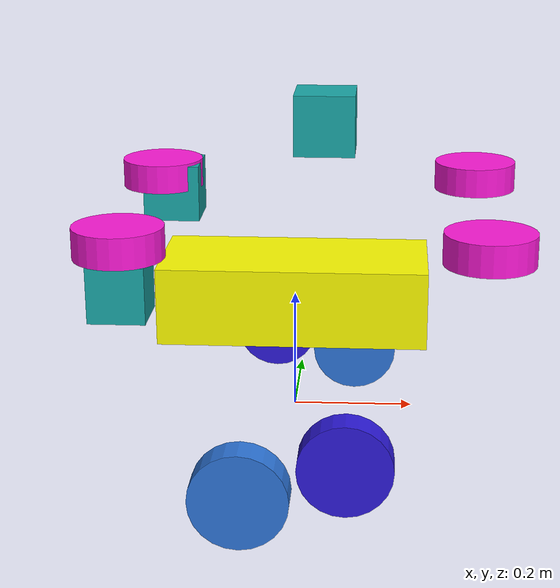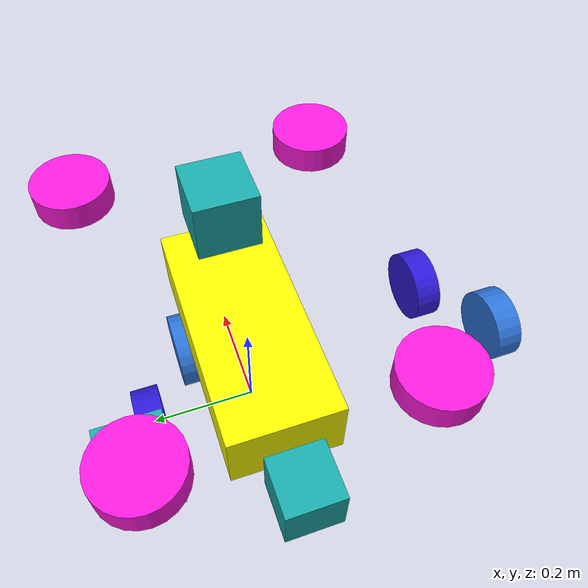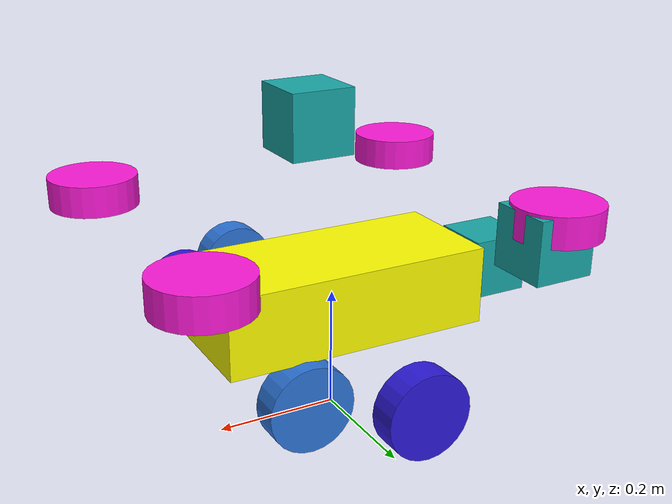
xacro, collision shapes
<?xml version="1.0"?>
<robot name="linorobot2_2wd" xmlns:xacro="http://ros.org/wiki/xacro">

  <xacro:include filename="$(find linorobot2_description)/urdf/mecanum_properties.urdf.xacro" />
  <xacro:include filename="$(find linorobot2_description)/urdf/mech/base.urdf.xacro" />
  <xacro:include filename="$(find linorobot2_description)/urdf/mech/mecanum_wheel.urdf.xacro" />
  <xacro:include filename="$(find linorobot2_description)/urdf/mech/mecanum_wheel2.urdf.xacro" />
  <xacro:include filename="$(find linorobot2_description)/urdf/sensors/imu.urdf.xacro" />
  <xacro:include filename="$(find linorobot2_description)/urdf/sensors/generic_laser.urdf.xacro" />
  <xacro:include filename="$(find linorobot2_description)/urdf/sensors/depth_sensor.urdf.xacro" />
  <xacro:include filename="$(find linorobot2_description)/urdf/controllers/omni_drive.urdf.xacro" />
  <xacro:include filename="$(find linorobot2_description)/urdf/robots/suspention.urdf.xacro" />

 <xacro:property name="teker" value="-0.4" />

  <xacro:base
    length="${base_length}"
    width="${base_width}"
    height="${base_height}"
    mass="${base_mass}"
    wheel_radius="${wheel_radius}"
    wheel_pos_z="${wheel_pos_z}"
/>

  <xacro:mecanum_wheel2
    side="front_left"
    radius="${wheel_radius}"
    width="${wheel_width}"
    pos_x="${wheel_pos_x-0.02}"
    pos_y="0.1"
    pos_z="${wheel_pos_z}"
    mass="${wheel_mass}"
    yon="-1.57"
  />

  <xacro:mecanum_wheel
    side="front_right"
    radius="${wheel_radius}"
    width="${wheel_width}"
    pos_x="${wheel_pos_x-0.02}"
    pos_y="${teker}"
    pos_z="${wheel_pos_z}"
    mass="${wheel_mass}"
    yon="1.57"

  />
  <xacro:mecanum_wheel
    side="rear_left"
    radius="${wheel_radius}"
    width="${wheel_width}"
    pos_x="${-wheel_pos_x+0.075}"
    pos_y="0.202"
    pos_z="${wheel_pos_z}"
    mass="${wheel_mass}"
    yon="-1.57"

  />

  <xacro:mecanum_wheel2
    side="rear_right"
    radius="${wheel_radius}"
    width="${wheel_width}"
    pos_x="${-wheel_pos_x+0.075}"
    pos_y="${teker-0.105}"
    pos_z="${wheel_pos_z}"
    mass="${wheel_mass}"
    yon="1.57"

  />

  <xacro:suspention
    side="front_left"
    radius="${wheel_radius}"
    width="${wheel_width}"
    pos_x="0.31"
    pos_y="0.23"
    pos_z="0.235"
    mass="0"
    yon="0"
    yonp="-0.8"

  />
   <xacro:suspention
    side="front_right"
    radius="${wheel_radius}"
    width="${wheel_width}"
    pos_x="0.31"
    pos_y="-0.23"
    pos_z="0.235"
    mass="0"
    yon="0"
    yonp="-0.8"
  />
   <xacro:suspention
    side="rear_left"
    radius="${wheel_radius}"
    width="${wheel_width}"
    pos_x="-0.255"
    pos_y="-0.225"
    pos_z="0.235"
    mass="0"
    yon="0"
    yonp="0.8"

  />
   <xacro:suspention
    side="rear_right"
    radius="${wheel_radius}"
    width="${wheel_width}"
    pos_x="-0.255"
    pos_y="0.225"
    pos_z="0.235"
    mass="0"
    yon="0"
    yonp="0.8"

  />

  <xacro:imu/>

  <xacro:generic_laser>
    <xacro:insert_block name="laser_pose" />
  </xacro:generic_laser>

  <xacro:depth_sensor>
    <xacro:insert_block name="depth_sensor_pose" />
  </xacro:depth_sensor>

  <xacro:omni_drive_controller/>
</robot>

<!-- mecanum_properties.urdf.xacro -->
<robot xmlns:xacro="http://ros.org/wiki/xacro">
  <xacro:arg name="namespace" default="" />
  <xacro:property name="base_length" value="0.445" />
  <xacro:property name="base_width" value="0.200" />
  <xacro:property name="base_height" value="0.129" />
  <xacro:property name="base_mass" value="10" />
  <!-- set empty on the wheel_mesh_file to use geometry instead of mesh -->
  <xacro:property name="base_mesh_file" value="" />

  <xacro:property name="wheel_radius" value="0.07162" />
  <xacro:property name="wheel_width" value="0.05" />
  <xacro:property name="wheel_pos_x" value="0.120" />
  <xacro:property name="wheel_pos_y" value="0.1355" />
  <xacro:property name="wheel_pos_z" value="-0.04788" />
  <xacro:property name="wheel_mass" value=".6" />
  <xacro:property name="wheel_torque" value="20" />
  <!-- set empty on the wheel_mesh_file to use geometry instead of mesh -->
  <xacro:property name="wheel_mesh_file" value="" />

  <xacro:property name="laser_pose">
    <origin xyz="-0.0475 0 0.125" rpy="0 0 0"/>
  </xacro:property>

  <xacro:property name="depth_sensor_pose">
    <origin xyz="0.2375 0 0.06" rpy="0 0 0"/>
  </xacro:property>
</robot>

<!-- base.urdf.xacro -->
<robot xmlns:xacro="http://ros.org/wiki/xacro">
  <xacro:macro name="base" params="length width height mass wheel_radius wheel_pos_z">
   <xacro:property name="yukseklik" value="0.085" />

    <link name="base_footprint"/>

    <link name="base_link">
      <visual>
        <origin xyz="-0.3 0 ${yukseklik}" rpy="0 0 1.57"/>
        <geometry>
          <mesh scale="0.002 0.002 0.002" filename="file:///home/samet/Desktop/ROS_WSLER/arcelik_lino2_workspace/lino2/linorobot2/linorobot2_description/mesh/chassis_red.stl"/>
        </geometry>
        <material name="red">
          <color rgba="1.0 1.0 0.0 1.0" />
        </material>
      </visual>

      <collision>
        <origin xyz="0 0 ${yukseklik}" rpy="0 0 3.14"/>
        <geometry>
          <box size="${length} ${width} ${height}"/>
        </geometry>
      </collision>

      <inertial>
        <origin xyz="0 0 0" rpy="0 0 0"/>
        <mass value="${mass}"/>
        <inertia ixx="${(1/12) * mass * ((width  * width)  + (height * height))}" ixy="0.0" ixz="0.0"
                 iyy="${(1/12) * mass * ((length * length) + (height * height))}" iyz="0.0"
                 izz="${(1/12) * mass * ((length * length) + (width  * width))}"/>
      </inertial>
    </link>
    <link name="rplidar">
      <inertial>
        <origin xyz="0 0 0" rpy="0 0 0"/>
        <mass value="1"/>
        <inertia ixx="0.1"  ixy="0"  ixz="0" iyy="0.1" iyz="0" izz="0.1" />
      </inertial>

      <visual>
        <origin xyz="0 0 ${yukseklik}" rpy="0 0 0" />
        <geometry>
          <mesh scale="0.002 0.002 0.002" filename="file:///home/samet/Desktop/robomaster-stl-files/Robomaster_Sim/lidar.stl"/>
        </geometry>
        <material name="yellow">
          <color rgba="0.1 0.6627 0.6627 1.0"/>
        </material>
      </visual>
      <collision>
        <origin xyz="0 0 ${yukseklik}" rpy="0 0 0"/>
        <geometry>
          <box size="0.1 0.1 0.1" />
        </geometry>
      </collision>
    </link>
        <link name="iskelet">
      <inertial>
        <origin xyz="0 0 0" rpy="0 0 0"/>
        <mass value="1"/>
        <inertia ixx="0.1"  ixy="0"  ixz="0" iyy="0.1" iyz="0" izz="0.1" />
      </inertial>

      <visual>
        <origin xyz="0 0 ${yukseklik}" rpy="0 0 0" />
        <geometry>
          <mesh scale="0.002 0.002 0.002" filename="file:///home/samet/Desktop/ROS_WSLER/arcelik_lino2_workspace/lino2/linorobot2/linorobot2_description/mesh/son_rigs.stl"/>
        </geometry>
        <material name="yellow">
          <color rgba="0.1 0.6627 0.6627 1.0"/>
        </material>
      </visual>
      <collision>
        <origin xyz="0 0 ${yukseklik}" rpy="0 0 0"/>
        <geometry>
          <box size="0.1 0.1 0.1" />
        </geometry>
      </collision>
    </link>

    <link name="ust_plaka">
      <inertial>
        <origin xyz="0 0 0" rpy="0 0 0"/>
        <mass value="1"/>
        <inertia ixx="0.1"  ixy="0"  ixz="0" iyy="0.1" iyz="0" izz="0.1" />
      </inertial>

      <visual>
        <origin xyz="0 0 ${yukseklik}" rpy="0 0 0" />
        <geometry>
          <mesh scale="0.002 0.002 0.002" filename="file:///home/samet/Desktop/ROS_WSLER/arcelik_lino2_workspace/lino2/linorobot2/linorobot2_description/mesh/UstPlaka2.stl"/>
        </geometry>
        <material name="yellow">
          <color rgba="0.1 0.6627 0.6627 1.0"/>
        </material>
      </visual>
      <collision>
        <origin xyz="0 0 ${yukseklik}" rpy="0 0 0"/>
        <geometry>
          <box size="0.1 0.1 0.1" />
        </geometry>
      </collision>
    </link>

    <gazebo reference="base_link">
      <visual>
        <material>
          <ambient>0.8392 0.6314 0.0 1.0</ambient>
          <diffuse>0.8392 0.6314 0.0 1.0</diffuse>
          <specular>0.99 0.99 0.99 1.0</specular>
          <emissive>0.0 0.0 0.0 0.0</emissive>
        </material>
      </visual>
    </gazebo>

    <joint name="base_to_footprint" type="fixed">
      <parent link="base_footprint"/>
      <child link="base_link"/>
      <origin xyz="0 0 ${wheel_radius - wheel_pos_z}" rpy="0 0 0"/>
    </joint>
        <joint name="lidar_joint" type="fixed">
      <parent link="base_link"/>
      <child link="rplidar"/>
      <origin xyz="0.05 0.015 0.29" rpy="0 0 1.57"/>
    </joint>
        <joint name="rig_joint" type="fixed">
      <parent link="base_link"/>
      <child link="iskelet"/>
      <origin xyz="-0.235 0.225 0.12" rpy="0 0 -1.57"/>
    </joint>
        <joint name="ust_plaka_joint" type="fixed">
      <parent link="base_link"/>
      <child link="ust_plaka"/>
      <origin xyz="-0.3 0 0" rpy="0 0 1.57"/>
    </joint>

  </xacro:macro>
</robot>

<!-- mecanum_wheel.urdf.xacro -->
<robot xmlns:xacro="http://ros.org/wiki/xacro">
  <xacro:macro name="mecanum_wheel" params="side radius width pos_x pos_y pos_z mass yon">
    <link name="${side}_wheel_link">
      <visual>
        <origin xyz="0 0.1 0" rpy="${yon} 0 0"/>
        <geometry>
          <mesh scale="0.002 0.002 0.002" filename="file:///home/samet/Desktop/ROS_WSLER/arcelik_lino2_workspace/lino2/linorobot2/linorobot2_description/mesh/teker_cw.dae"/>
        </geometry>
        <material name="blue">
            <color rgba="0.1764 0.1 0.8509 1.0"/>
        </material>
      </visual>
      <collision>
        <origin xyz="0 0 0" rpy="${yon} 0 0"/>
        <geometry>
          <cylinder radius="${radius}" length="${width}"/>
        </geometry>
      </collision>

      <inertial>
        <origin xyz="0 0 0" rpy="0 0 0"/>
        <mass value="${mass}"/>
        <inertia ixx="${(2/5) * mass * (radius * radius)}" ixy="0" ixz="0"
                 iyy="${(2/5) * mass * (radius * radius)}" iyz="0"
                 izz="${(2/5) * mass * (radius * radius)}" />
      </inertial>
    </link>

    <gazebo reference="${side}_wheel_link">
        <mu1>0.2</mu1>
        <mu2>0.2</mu2>
    </gazebo>

    <gazebo reference="${side}_wheel_link">
      <visual>
        <material>
          <ambient>0.1764 0.4588 0.8509 1.0</ambient>
          <diffuse>0.1764 0.4588 0.8509 1.0</diffuse>
          <specular>0.1764 0.4588 0.8509 1.0</specular>
          <emissive>0.0 0.0 0.0 0.0</emissive>
        </material>
      </visual>
    </gazebo>
    <joint name="${side}_wheel_joint" type="continuous">
      <axis xyz="0 1 0" />
      <parent link="base_link"/>
      <child link="${side}_wheel_link"/>
      <origin xyz="${pos_x} ${pos_y} ${pos_z}" rpy="0 0 0"/>
    </joint>
  </xacro:macro>
</robot>

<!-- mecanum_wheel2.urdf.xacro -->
<robot xmlns:xacro="http://ros.org/wiki/xacro">
  <xacro:macro name="mecanum_wheel2" params="side radius width pos_x pos_y pos_z mass yon">
    <link name="${side}_wheel_link">
      <visual>
        <origin xyz="0 0.21 0" rpy="${yon} 0 0"/>
        <geometry>
          <mesh scale="0.002 0.002 0.002" filename="file:///home/samet/Desktop/ROS_WSLER/arcelik_lino2_workspace/lino2/linorobot2/linorobot2_description/mesh/teker_cw.dae"/>
        </geometry>
        <material name="blue">
            <color rgba="0.1764 0.4588 0.8509 1.0"/>
        </material>
      </visual>
      <collision>
        <origin xyz="0 0 0" rpy="${yon} 0 0"/>
        <geometry>
          <cylinder radius="${radius}" length="${width}"/>
        </geometry>
      </collision>

      <inertial>
        <origin xyz="0 0 0" rpy="0 0 0"/>
        <mass value="${mass}"/>
        <inertia ixx="${(2/5) * mass * (radius * radius)}" ixy="0" ixz="0"
                 iyy="${(2/5) * mass * (radius * radius)}" iyz="0"
                 izz="${(2/5) * mass * (radius * radius)}" />
      </inertial>
    </link>

    <gazebo reference="${side}_wheel_link">
        <mu1>0.2</mu1>
        <mu2>0.2</mu2>
    </gazebo>

    <gazebo reference="${side}_wheel_link">
      <visual>
        <material>
          <ambient>0.1764 0.4588 0.8509 1.0</ambient>
          <diffuse>0.1764 0.4588 0.8509 1.0</diffuse>
          <specular>0.1764 0.4588 0.8509 1.0</specular>
          <emissive>0.0 0.0 0.0 0.0</emissive>
        </material>
      </visual>
    </gazebo>
    <joint name="${side}_wheel_joint" type="continuous">
      <axis xyz="0 1 0" />
      <parent link="base_link"/>
      <child link="${side}_wheel_link"/>
      <origin xyz="${pos_x} ${pos_y} ${pos_z}" rpy="0 0 0"/>
    </joint>
  </xacro:macro>
</robot>

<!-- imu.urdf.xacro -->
<robot xmlns:xacro="http://ros.org/wiki/xacro">
  <xacro:macro name="imu">
    <link name="imu_link"/>

    <joint name="imu_to_base_link" type="fixed">
      <parent link="base_link"/>
      <child link="imu_link"/>
      <origin xyz="0 0 0" rpy="0 0 0"/>
    </joint>

    <gazebo>
      <plugin filename="gz-sim-imu-system" name="gz::sim::systems::Imu">
      </plugin>
    </gazebo>

    <gazebo reference="imu_link">
      <sensor name="imu_sensor" type="imu">
        <topic>$(arg namespace)/imu/data</topic>
        <update_rate>50</update_rate>
        <always_on>true</always_on>
        <visualize>true</visualize>
      </sensor>
    </gazebo>
  </xacro:macro>
</robot>

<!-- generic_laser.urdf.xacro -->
<robot xmlns:xacro="http://ros.org/wiki/xacro">
  <xacro:include filename="$(find linorobot2_description)/urdf/sensors/laser.urdf.xacro" />

  <xacro:macro name="generic_laser" params="*origin">
    <xacro:laser
      update_rate="10"
      ray_count="360"
      min_angle="-3.1416"
      max_angle="3.1416"
      min_range="0.08"
      max_range="12.0"
      frame_id="laser"
      topic_name="/scan"
    >
      <xacro:insert_block name="origin" />
    </xacro:laser>
  </xacro:macro>

  <xacro:macro name="generic_base_laser" params="*origin">
    <xacro:laser
      update_rate="10"
      ray_count="360"
      min_angle="-3.1416"
      max_angle="3.1416"
      min_range="0.21"
      max_range="5.5"
      frame_id="base_laser"
      topic_name="base/scan"
    >
      <xacro:insert_block name="origin" />
    </xacro:laser>
  </xacro:macro>
</robot>

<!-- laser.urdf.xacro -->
<robot xmlns:xacro="http://ros.org/wiki/xacro">
  <xacro:property name="M_PI" value="3.1415926535897931" />
  <xacro:macro name="laser" params="*origin update_rate ray_count min_angle max_angle min_range max_range frame_id topic_name">
    <link name="${frame_id}">
      <visual>
        <origin xyz="0 0 -0.025" rpy="0 0 0"/>
        <geometry>
          <cylinder radius="0.0375" length="0.05"/>
        </geometry>
        <material name="green">
            <color rgba="0.003 0.639 0.223 1.0"/>
        </material>
      </visual>
      <collision>
        <origin xyz="0 0 -0.025" rpy="0 0 0"/>
        <geometry>
          <cylinder radius="0.0375" length="0.05"/>
        </geometry>
      </collision>

      <inertial>
        <origin xyz="0 0 0" rpy="0 0 0"/>
        <mass value="0.1"/>
        <inertia ixx="${(2/5) * 0.1 * (0.0375 * 0.0375)}" ixy="0" ixz="0"
                 iyy="${(2/5) * 0.1 * (0.0375 * 0.0375)}" iyz="0"
                 izz="${(2/5) * 0.1 * (0.0375 * 0.0375)}" />
      </inertial>
    </link>

    <gazebo reference="${frame_id}">
      <visual>
        <material>
          <ambient>0.003 0.639 0.223 1.0</ambient>
          <diffuse>0.003 0.639 0.223 1.0</diffuse>
          <specular>0.003 0.639 0.223 1.0</specular>
          <emissive>0.0 0.0 0.0 0.0</emissive>
        </material>
      </visual>
    </gazebo>

    <joint name="${frame_id}_to_base_link" type="fixed">
      <parent link="base_link"/>
      <child link="${frame_id}"/>
      <xacro:insert_block name="origin" />
    </joint>

    <gazebo reference="${frame_id}">
      <sensor name="gpu_lidar" type="gpu_lidar">
        <topic>$(arg namespace)${topic_name}</topic>
        <gz_frame_id>${frame_id}</gz_frame_id>
        <update_rate>${update_rate}</update_rate>
        <always_on>true</always_on>
        <visualize>true</visualize>
        <lidar>
          <scan>
            <horizontal>
              <samples>${ray_count}</samples>
              <resolution>1</resolution>
              <min_angle>${min_angle}</min_angle>
              <max_angle>${max_angle}</max_angle>
            </horizontal>
            <vertical>
              <samples>1</samples>
              <resolution>1</resolution>
              <min_angle>0.0</min_angle>
              <max_angle>0.0</max_angle>
            </vertical>
          </scan>
          <range>
            <min>${min_range}</min>
            <max>${max_range}</max>
            <resolution>0.01</resolution>
          </range>
        </lidar>
      </sensor>
    </gazebo>
  </xacro:macro>
</robot>

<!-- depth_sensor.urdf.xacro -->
<robot xmlns:xacro="http://ros.org/wiki/xacro">
  <xacro:property name="M_PI" value="3.1415926535897931" />
  <xacro:macro name="depth_sensor" params="*origin">
    <link name="camera_link">
      <inertial>
        <origin xyz="0 0 0" rpy="0 0 0"/>
        <mass value="0.01"/>
        <inertia ixx="0.1"  ixy="0"  ixz="0" iyy="0.1" iyz="0" izz="0.1" />
      </inertial>
      <visual>
        <origin xyz="0 0 0" rpy="1.57 0 1.57" />
        <geometry>
          <mesh scale="0.002 0.002 0.002" filename="file:///home/samet/Desktop/ROS_WSLER/arcelik_lino2_workspace/lino2/linorobot2/linorobot2_description/mesh/Intel_realsense.stl"/>
        </geometry>
        <material name="yellow">
          <color rgba="0.1 0.6627 0.6627 1.0"/>
        </material>
      </visual>
    </link>

    <gazebo reference="camera_link">
      <visual>
        <material>
          <ambient>0.416 0.051 0.047 1.0</ambient>
          <diffuse>0.416 0.051 0.047 1.0</diffuse>
          <specular>0.416 0.051 0.047 1.0</specular>
          <emissive>0.416 0.051 0.047 1.0</emissive>
        </material>
      </visual>
    </gazebo>rgb(255,1,255)

    <joint name="camera_to_base_link" type="fixed">
            <origin xyz="0.55 0 0.3" rpy="0 0 0"/>

      <parent link="base_link"/>
      <child link="camera_link"/>
      <xacro:insert_block name="origin" />
    </joint>

    <link name="camera_depth_link"/>
    <joint name="camera_depth_joint" type="fixed">
      <origin xyz="0 0 0" rpy="0 0 0"/>
      <parent link="camera_link"/>
      <child link="camera_depth_link"/>
    </joint>

    https://github.com/ros-simulation/gazebo_ros_pkgs/wiki/ROS-2-Migration:-Camera#gazebo_ros_camera
    <gazebo reference="camera_link">
      <sensor name="camera" type="depth">
        <always_on>true</always_on>
        <update_rate>30.0</update_rate>
        <camera name="camera">
          <horizontal_fov>1.50098</horizontal_fov>
          <image>
            <width>640</width>
            <height>480</height>
            <format>R8G8B8</format>
          </image>
        </camera>
        <plugin name="camera_controller" filename="libgazebo_ros_camera.so">
          <ros>
            <remapping>/camera/camera_info:=/camera/color/camera_info</remapping>
            <remapping>/camera/image_raw:=/camera/color/image_raw</remapping>
            <remapping>/camera/points:=/camera/depth/color/points</remapping>
            <remapping>/camera/depth/image_raw:=/camera/depth/image_rect_raw</remapping>
          </ros>
          <min_depth>0.015</min_depth>
          <max_depth>3.0</max_depth>
          <hack_baseline>0.07</hack_baseline>
          <frame_name>camera_depth_link</frame_name>
          <distortion_k1>0.00000001</distortion_k1>
          <distortion_k2>0.00000001</distortion_k2>
          <distortion_k3>0.00000001</distortion_k3>
          <distortion_t1>0.00000001</distortion_t1>
          <distortion_t2>0.00000001</distortion_t2>
        </plugin>
      </sensor>

    </gazebo>
  </xacro:macro>
</robot>

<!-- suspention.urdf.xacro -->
<robot xmlns:xacro="http://ros.org/wiki/xacro">
  <xacro:macro name="suspention" params="side radius width pos_x pos_y pos_z mass yon yonp">
    <link name="${side}_suspention_link">
      <visual>
        <origin xyz="0 0 0" rpy="${yon} ${yonp} 0"/>
        <geometry>
          <mesh scale="0.002 0.002 0.002" filename="file:///home/samet/Desktop/ROS_WSLER/arcelik_lino2_workspace/lino2/linorobot2/linorobot2_description/mesh/suspention_son.dae"/>
        </geometry>
        <material name="blue">
            <color rgba="1 0.1 0.8509 0.0"/>
        </material>
      </visual>
      <collision>
        <origin xyz="0 0 0" rpy="${yon} 0 0"/>
        <geometry>
          <cylinder radius="${radius}" length="${width}"/>
        </geometry>
      </collision>

      <inertial>
        <origin xyz="0 0 0" rpy="0 0 0"/>
        <mass value="${mass}"/>
        <inertia ixx="${(2/5) * mass * (radius * radius)}" ixy="0" ixz="0"
                 iyy="${(2/5) * mass * (radius * radius)}" iyz="0"
                 izz="${(2/5) * mass * (radius * radius)}" />
      </inertial>
    </link>

    <joint name="${side}_suspention_joint" type="fixed">
      <axis xyz="0 1 0" />
      <parent link="base_link"/>
      <child link="${side}_suspention_link"/>
      <origin xyz="${pos_x} ${pos_y} ${pos_z}" rpy="0 0 0"/>
    </joint>
  </xacro:macro>
</robot>
